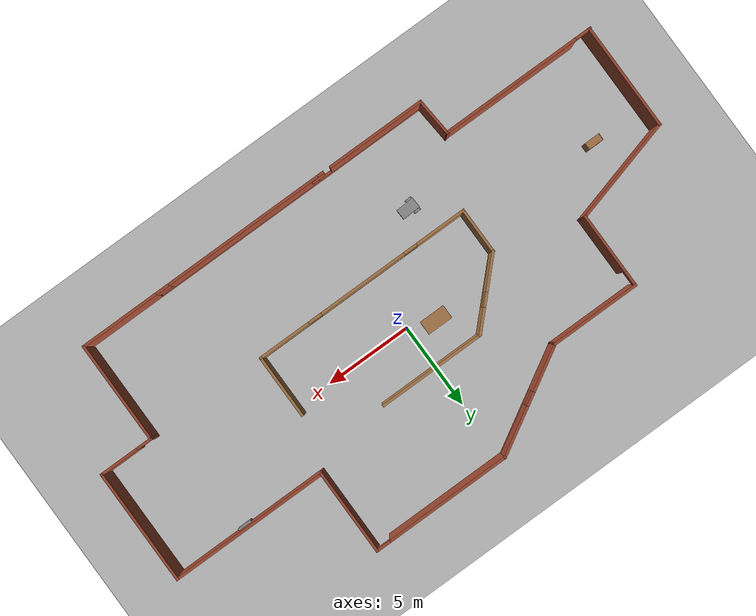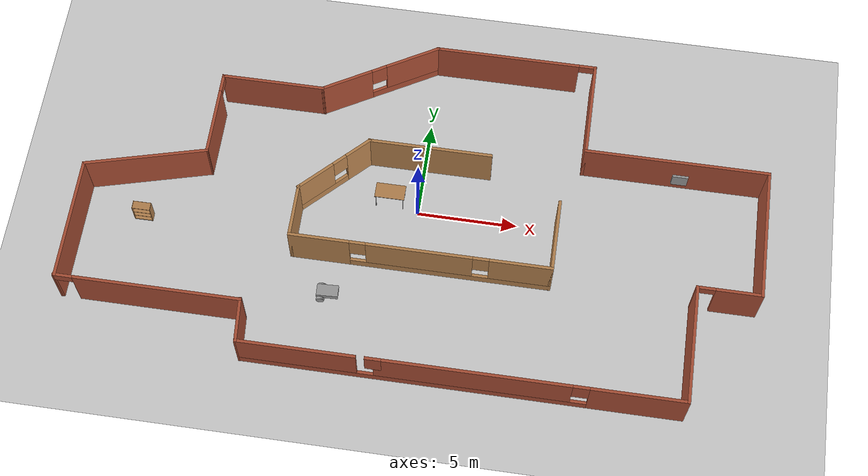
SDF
<sdf version="1.6">
 <world name="default">
  <model name="ground_plane">
   <static>1</static>
   <link name="link">
    <collision name="collision">
     <geometry><plane><normal>0 0 1</normal><size>100 100</size></plane></geometry>
     <surface>
      <contact><collide_bitmask>65535</collide_bitmask></contact>
      <friction><ode><mu>100</mu><mu2>50</mu2></ode></friction>
     </surface>
    </collision>
    <visual name="visual">
     <cast_shadows>0</cast_shadows>
     <geometry><plane><normal>0 0 1</normal><size>100 100</size></plane></geometry>
     <material>
      <script><uri>file://media/materials/scripts/gazebo.material</uri><name>Gazebo/Grey</name></script>
     </material>
    </visual>
   </link>
  </model>
  <model name="office">
   <pose>0.19118 -0.3324 0 0 -0 0</pose>
   <link name="Wall_10">
    <pose>3.71196 8.6392 0 0 -0 0</pose>
    <visual name="Wall_10_Visual_0">
     <pose>-0.451666 0 1.25 0 -0 0</pose>
     <geometry><box><size>7.34667 0.15 2.5</size></box></geometry>
     <material>
      <script><uri>file://media/materials/scripts/gazebo.material</uri><name>Gazebo/Bricks</name></script>
      <ambient>1 1 1 1</ambient>
     </material>
     <meta><layer>0</layer></meta>
    </visual>
    <collision name="Wall_10_Collision_0">
     <geometry><box><size>7.34667 0.15 2.5</size></box></geometry>
     <pose>-0.451666 0 1.25 0 -0 0</pose>
    </collision>
    <visual name="Wall_10_Visual_1">
     <pose>4.12333 0 1.25 0 -0 0</pose>
     <geometry><box><size>0.003332 0.15 2.5</size></box></geometry>
     <material>
      <script><uri>file://media/materials/scripts/gazebo.material</uri><name>Gazebo/Bricks</name></script>
      <ambient>1 1 1 1</ambient>
     </material>
     <meta><layer>0</layer></meta>
    </visual>
    <collision name="Wall_10_Collision_1">
     <geometry><box><size>0.003332 0.15 2.5</size></box></geometry>
     <pose>4.12333 0 1.25 0 -0 0</pose>
    </collision>
    <visual name="Wall_10_Visual_2">
     <pose>3.67167 0 2.25 0 -0 0</pose>
     <geometry><box><size>0.9 0.15 0.5</size></box></geometry>
     <material>
      <script><uri>file://media/materials/scripts/gazebo.material</uri><name>Gazebo/Bricks</name></script>
      <ambient>1 1 1 1</ambient>
     </material>
     <meta><layer>0</layer></meta>
    </visual>
    <collision name="Wall_10_Collision_2">
     <geometry><box><size>0.9 0.15 0.5</size></box></geometry>
     <pose>3.67167 0 2.25 0 -0 0</pose>
    </collision>
   </link>
   <link name="Wall_11">
    <collision name="Wall_11_Collision">
     <geometry><box><size>5 0.15 2.5</size></box></geometry>
     <pose>0 0 1.25 0 -0 0</pose>
    </collision>
    <visual name="Wall_11_Visual">
     <pose>0 0 1.25 0 -0 0</pose>
     <geometry><box><size>5 0.15 2.5</size></box></geometry>
     <material>
      <script><uri>file://media/materials/scripts/gazebo.material</uri><name>Gazebo/Bricks</name></script>
      <ambient>0.435294 0.796078 0.67451 1</ambient>
     </material>
     <meta><layer>0</layer></meta>
    </visual>
    <pose>7.76196 6.2142 0 0 0 -1.5708</pose>
   </link>
   <link name="Wall_12">
    <collision name="Wall_12_Collision">
     <geometry><box><size>9.25 0.15 2.5</size></box></geometry>
     <pose>0 0 1.25 0 -0 0</pose>
    </collision>
    <visual name="Wall_12_Visual">
     <pose>0 0 1.25 0 -0 0</pose>
     <geometry><box><size>9.25 0.15 2.5</size></box></geometry>
     <material>
      <script><uri>file://media/materials/scripts/gazebo.material</uri><name>Gazebo/Bricks</name></script>
      <ambient>0.435294 0.796078 0.67451 1</ambient>
     </material>
     <meta><layer>0</layer></meta>
    </visual>
    <pose>12.312 3.7892 0 0 -0 0</pose>
   </link>
   <link name="Wall_13">
    <collision name="Wall_13_Collision">
     <geometry><box><size>6.75 0.15 2.5</size></box></geometry>
     <pose>0 0 1.25 0 -0 0</pose>
    </collision>
    <visual name="Wall_13_Visual">
     <pose>0 0 1.25 0 -0 0</pose>
     <geometry><box><size>6.75 0.15 2.5</size></box></geometry>
     <material>
      <script><uri>file://media/materials/scripts/gazebo.material</uri><name>Gazebo/Bricks</name></script>
      <ambient>0.435294 0.796078 0.67451 1</ambient>
     </material>
     <meta><layer>0</layer></meta>
    </visual>
    <pose>16.862 0.489204 0 0 0 -1.5708</pose>
   </link>
   <link name="Wall_14">
    <pose>15.312 -2.8108 0 0 -0 3.14159</pose>
    <visual name="Wall_14_Visual_0">
     <pose>-0.469815 0 1.25 0 -0 0</pose>
     <geometry><box><size>2.31037 0.15 2.5</size></box></geometry>
     <material>
      <script><uri>file://media/materials/scripts/gazebo.material</uri><name>Gazebo/Bricks</name></script>
      <ambient>0.435294 0.796078 0.67451 1</ambient>
     </material>
     <meta><layer>0</layer></meta>
    </visual>
    <collision name="Wall_14_Collision_0">
     <geometry><box><size>2.31037 0.15 2.5</size></box></geometry>
     <pose>-0.469815 0 1.25 0 -0 0</pose>
    </collision>
    <visual name="Wall_14_Visual_1">
     <pose>1.60519 0 1.25 0 -0 0</pose>
     <geometry><box><size>0.03963 0.15 2.5</size></box></geometry>
     <material>
      <script><uri>file://media/materials/scripts/gazebo.material</uri><name>Gazebo/Bricks</name></script>
      <ambient>0.435294 0.796078 0.67451 1</ambient>
     </material>
     <meta><layer>0</layer></meta>
    </visual>
    <collision name="Wall_14_Collision_1">
     <geometry><box><size>0.03963 0.15 2.5</size></box></geometry>
     <pose>1.60519 0 1.25 0 -0 0</pose>
    </collision>
    <visual name="Wall_14_Visual_2">
     <pose>1.13537 0 2.25 0 -0 0</pose>
     <geometry><box><size>0.9 0.15 0.5</size></box></geometry>
     <material>
      <script><uri>file://media/materials/scripts/gazebo.material</uri><name>Gazebo/Bricks</name></script>
      <ambient>0.435294 0.796078 0.67451 1</ambient>
     </material>
     <meta><layer>0</layer></meta>
    </visual>
    <collision name="Wall_14_Collision_2">
     <geometry><box><size>0.9 0.15 0.5</size></box></geometry>
     <pose>1.13537 0 2.25 0 -0 0</pose>
    </collision>
   </link>
   <link name="Wall_15">
    <collision name="Wall_15_Collision">
     <geometry><box><size>6 0.15 2.5</size></box></geometry>
     <pose>0 0 1.25 0 -0 0</pose>
    </collision>
    <visual name="Wall_15_Visual">
     <pose>0 0 1.25 0 -0 0</pose>
     <geometry><box><size>6 0.15 2.5</size></box></geometry>
     <material>
      <script><uri>file://media/materials/scripts/gazebo.material</uri><name>Gazebo/Bricks</name></script>
      <ambient>0.435294 0.796078 0.67451 1</ambient>
     </material>
     <meta><layer>0</layer></meta>
    </visual>
    <pose>13.762 -5.7358 0 0 0 -1.5708</pose>
   </link>
   <link name="Wall_16">
    <pose>3.08696 -8.6608 0 0 -0 3.14159</pose>
    <visual name="Wall_16_Visual_0">
     <pose>-8.41899 0 1.25 0 -0 0</pose>
     <geometry><box><size>4.66203 0.15 2.5</size></box></geometry>
     <material>
      <script><uri>file://media/materials/scripts/gazebo.material</uri><name>Gazebo/Bricks</name></script>
      <ambient>0.435294 0.796078 0.67451 1</ambient>
     </material>
     <meta><layer>0</layer></meta>
    </visual>
    <collision name="Wall_16_Collision_0">
     <geometry><box><size>4.66203 0.15 2.5</size></box></geometry>
     <pose>-8.41899 0 1.25 0 -0 0</pose>
    </collision>
    <visual name="Wall_16_Visual_1">
     <pose>2.33101 0 0.25 0 -0 0</pose>
     <geometry><box><size>16.838 0.15 0.5</size></box></geometry>
     <material>
      <script><uri>file://media/materials/scripts/gazebo.material</uri><name>Gazebo/Bricks</name></script>
      <ambient>0.435294 0.796078 0.67451 1</ambient>
     </material>
     <meta><layer>0</layer></meta>
    </visual>
    <collision name="Wall_16_Collision_1">
     <geometry><box><size>16.838 0.15 0.5</size></box></geometry>
     <pose>2.33101 0 0.25 0 -0 0</pose>
    </collision>
    <visual name="Wall_16_Visual_2">
     <pose>-0.576441 0 1.5 0 -0 0</pose>
     <geometry><box><size>9.42306 0.15 2</size></box></geometry>
     <material>
      <script><uri>file://media/materials/scripts/gazebo.material</uri><name>Gazebo/Bricks</name></script>
      <ambient>0.435294 0.796078 0.67451 1</ambient>
     </material>
     <meta><layer>0</layer></meta>
    </visual>
    <collision name="Wall_16_Collision_2">
     <geometry><box><size>9.42306 0.15 2</size></box></geometry>
     <pose>-0.576441 0 1.5 0 -0 0</pose>
    </collision>
    <visual name="Wall_16_Visual_3">
     <pose>7.84255 0 1.5 0 -0 0</pose>
     <geometry><box><size>5.81491 0.15 2</size></box></geometry>
     <material>
      <script><uri>file://media/materials/scripts/gazebo.material</uri><name>Gazebo/Bricks</name></script>
      <ambient>0.435294 0.796078 0.67451 1</ambient>
     </material>
     <meta><layer>0</layer></meta>
    </visual>
    <collision name="Wall_16_Collision_3">
     <geometry><box><size>5.81491 0.15 2</size></box></geometry>
     <pose>7.84255 0 1.5 0 -0 0</pose>
    </collision>
    <visual name="Wall_16_Visual_4">
     <pose>-5.68797 0 1.9 0 -0 0</pose>
     <geometry><box><size>0.8 0.15 1.2</size></box></geometry>
     <material>
      <script><uri>file://media/materials/scripts/gazebo.material</uri><name>Gazebo/Bricks</name></script>
      <ambient>0.435294 0.796078 0.67451 1</ambient>
     </material>
     <meta><layer>0</layer></meta>
    </visual>
    <collision name="Wall_16_Collision_4">
     <geometry><box><size>0.8 0.15 1.2</size></box></geometry>
     <pose>-5.68797 0 1.9 0 -0 0</pose>
    </collision>
    <visual name="Wall_16_Visual_5">
     <pose>4.13509 0 1.9 0 -0 0</pose>
     <geometry><box><size>0.8 0.15 1.2</size></box></geometry>
     <material>
      <script><uri>file://media/materials/scripts/gazebo.material</uri><name>Gazebo/Bricks</name></script>
      <ambient>0.435294 0.796078 0.67451 1</ambient>
     </material>
     <meta><layer>0</layer></meta>
    </visual>
    <collision name="Wall_16_Collision_5">
     <geometry><box><size>0.8 0.15 1.2</size></box></geometry>
     <pose>4.13509 0 1.9 0 -0 0</pose>
    </collision>
   </link>
   <link name="Wall_17">
    <collision name="Wall_17_Collision">
     <geometry><box><size>2.28536 0.15 2.5</size></box></geometry>
     <pose>0 0 1.25 0 -0 0</pose>
    </collision>
    <visual name="Wall_17_Visual">
     <pose>0 0 1.25 0 -0 0</pose>
     <geometry><box><size>2.28536 0.15 2.5</size></box></geometry>
     <material>
      <script><uri>file://media/materials/scripts/gazebo.material</uri><name>Gazebo/Bricks</name></script>
      <ambient>0.435294 0.796078 0.67451 1</ambient>
     </material>
     <meta><layer>0</layer></meta>
    </visual>
    <pose>-7.675 -7.59667 0 0 -0 1.65233</pose>
   </link>
   <link name="Wall_18">
    <pose>-12.312 -6.56732 0 0 -0 3.14159</pose>
    <visual name="Wall_18_Visual_0">
     <pose>-0.488616 0 1.25 0 -0 0</pose>
     <geometry><box><size>8.27277 0.15 2.5</size></box></geometry>
     <material>
      <script><uri>file://media/materials/scripts/gazebo.material</uri><name>Gazebo/Bricks</name></script>
      <ambient>0.435294 0.796078 0.67451 1</ambient>
     </material>
     <meta><layer>0</layer></meta>
    </visual>
    <collision name="Wall_18_Collision_0">
     <geometry><box><size>8.27277 0.15 2.5</size></box></geometry>
     <pose>-0.488616 0 1.25 0 -0 0</pose>
    </collision>
    <visual name="Wall_18_Visual_1">
     <pose>4.58638 0 1.25 0 -0 0</pose>
     <geometry><box><size>0.077231 0.15 2.5</size></box></geometry>
     <material>
      <script><uri>file://media/materials/scripts/gazebo.material</uri><name>Gazebo/Bricks</name></script>
      <ambient>0.435294 0.796078 0.67451 1</ambient>
     </material>
     <meta><layer>0</layer></meta>
    </visual>
    <collision name="Wall_18_Collision_1">
     <geometry><box><size>0.077231 0.15 2.5</size></box></geometry>
     <pose>4.58638 0 1.25 0 -0 0</pose>
    </collision>
    <visual name="Wall_18_Visual_2">
     <pose>4.09777 0 2.25 0 -0 0</pose>
     <geometry><box><size>0.9 0.15 0.5</size></box></geometry>
     <material>
      <script><uri>file://media/materials/scripts/gazebo.material</uri><name>Gazebo/Bricks</name></script>
      <ambient>0.435294 0.796078 0.67451 1</ambient>
     </material>
     <meta><layer>0</layer></meta>
    </visual>
    <collision name="Wall_18_Collision_2">
     <geometry><box><size>0.9 0.15 0.5</size></box></geometry>
     <pose>4.09777 0 2.25 0 -0 0</pose>
    </collision>
   </link>
   <link name="Wall_21">
    <pose>-4.52938 1.29817 0 0 0 -2.35619</pose>
    <visual name="Wall_21_Visual_0">
     <pose>-1.48243 0 1.25 0 -0 0</pose>
     <geometry><box><size>1.53513 0.15 2.5</size></box></geometry>
     <material>
      <script><uri>file://media/materials/scripts/gazebo.material</uri><name>Gazebo/Wood</name></script>
      <ambient>0.435294 0.796078 0.67451 1</ambient>
     </material>
     <meta><layer>0</layer></meta>
    </visual>
    <collision name="Wall_21_Collision_0">
     <geometry><box><size>1.53513 0.15 2.5</size></box></geometry>
     <pose>-1.48243 0 1.25 0 -0 0</pose>
    </collision>
    <visual name="Wall_21_Visual_1">
     <pose>0.767566 0 0.25 0 -0 0</pose>
     <geometry><box><size>2.96487 0.15 0.5</size></box></geometry>
     <material>
      <script><uri>file://media/materials/scripts/gazebo.material</uri><name>Gazebo/Wood</name></script>
      <ambient>0.435294 0.796078 0.67451 1</ambient>
     </material>
     <meta><layer>0</layer></meta>
    </visual>
    <collision name="Wall_21_Collision_1">
     <geometry><box><size>2.96487 0.15 0.5</size></box></geometry>
     <pose>0.767566 0 0.25 0 -0 0</pose>
    </collision>
    <visual name="Wall_21_Visual_2">
     <pose>1.16757 0 1.5 0 -0 0</pose>
     <geometry><box><size>2.16487 0.15 2</size></box></geometry>
     <material>
      <script><uri>file://media/materials/scripts/gazebo.material</uri><name>Gazebo/Wood</name></script>
      <ambient>0.435294 0.796078 0.67451 1</ambient>
     </material>
     <meta><layer>0</layer></meta>
    </visual>
    <collision name="Wall_21_Collision_2">
     <geometry><box><size>2.16487 0.15 2</size></box></geometry>
     <pose>1.16757 0 1.5 0 -0 0</pose>
    </collision>
    <visual name="Wall_21_Visual_3">
     <pose>-0.314868 0 1.9 0 -0 0</pose>
     <geometry><box><size>0.8 0.15 1.2</size></box></geometry>
     <material>
      <script><uri>file://media/materials/scripts/gazebo.material</uri><name>Gazebo/Wood</name></script>
      <ambient>0.435294 0.796078 0.67451 1</ambient>
     </material>
     <meta><layer>0</layer></meta>
    </visual>
    <collision name="Wall_21_Collision_3">
     <geometry><box><size>0.8 0.15 1.2</size></box></geometry>
     <pose>-0.314868 0 1.9 0 -0 0</pose>
    </collision>
   </link>
   <link name="Wall_22">
    <collision name="Wall_22_Collision">
     <geometry><box><size>2.75 0.15 2.5</size></box></geometry>
     <pose>0 0 1.25 0 -0 0</pose>
    </collision>
    <visual name="Wall_22_Visual">
     <pose>0 0 1.25 0 -0 0</pose>
     <geometry><box><size>2.75 0.15 2.5</size></box></geometry>
     <material>
      <script><uri>file://media/materials/scripts/gazebo.material</uri><name>Gazebo/Wood</name></script>
      <ambient>0.435294 0.796078 0.67451 1</ambient>
     </material>
     <meta><layer>0</layer></meta>
    </visual>
    <pose>-6.06734 -1.53979 0 0 0 -1.5708</pose>
   </link>
   <link name="Wall_23">
    <pose>0.357662 -2.83979 0 0 -0 0</pose>
    <visual name="Wall_23_Visual_0">
     <pose>-4.98806 0 1.25 0 -0 0</pose>
     <geometry><box><size>3.02388 0.15 2.5</size></box></geometry>
     <material>
      <script><uri>file://media/materials/scripts/gazebo.material</uri><name>Gazebo/Wood</name></script>
      <ambient>0.435294 0.796078 0.67451 1</ambient>
     </material>
     <meta><layer>0</layer></meta>
    </visual>
    <collision name="Wall_23_Collision_0">
     <geometry><box><size>3.02388 0.15 2.5</size></box></geometry>
     <pose>-4.98806 0 1.25 0 -0 0</pose>
    </collision>
    <visual name="Wall_23_Visual_1">
     <pose>1.51194 0 0.25 0 -0 0</pose>
     <geometry><box><size>9.97612 0.15 0.5</size></box></geometry>
     <material>
      <script><uri>file://media/materials/scripts/gazebo.material</uri><name>Gazebo/Wood</name></script>
      <ambient>0.435294 0.796078 0.67451 1</ambient>
     </material>
     <meta><layer>0</layer></meta>
    </visual>
    <collision name="Wall_23_Collision_1">
     <geometry><box><size>9.97612 0.15 0.5</size></box></geometry>
     <pose>1.51194 0 0.25 0 -0 0</pose>
    </collision>
    <visual name="Wall_23_Visual_2">
     <pose>-0.051543 0 1.5 0 -0 0</pose>
     <geometry><box><size>5.24915 0.15 2</size></box></geometry>
     <material>
      <script><uri>file://media/materials/scripts/gazebo.material</uri><name>Gazebo/Wood</name></script>
      <ambient>0.435294 0.796078 0.67451 1</ambient>
     </material>
     <meta><layer>0</layer></meta>
    </visual>
    <collision name="Wall_23_Collision_2">
     <geometry><box><size>5.24915 0.15 2</size></box></geometry>
     <pose>-0.051543 0 1.5 0 -0 0</pose>
    </collision>
    <visual name="Wall_23_Visual_3">
     <pose>4.93652 0 1.5 0 -0 0</pose>
     <geometry><box><size>3.12697 0.15 2</size></box></geometry>
     <material>
      <script><uri>file://media/materials/scripts/gazebo.material</uri><name>Gazebo/Wood</name></script>
      <ambient>0.435294 0.796078 0.67451 1</ambient>
     </material>
     <meta><layer>0</layer></meta>
    </visual>
    <collision name="Wall_23_Collision_3">
     <geometry><box><size>3.12697 0.15 2</size></box></geometry>
     <pose>4.93652 0 1.5 0 -0 0</pose>
    </collision>
    <visual name="Wall_23_Visual_4">
     <pose>-3.07612 0 1.9 0 -0 0</pose>
     <geometry><box><size>0.8 0.15 1.2</size></box></geometry>
     <material>
      <script><uri>file://media/materials/scripts/gazebo.material</uri><name>Gazebo/Wood</name></script>
      <ambient>0.435294 0.796078 0.67451 1</ambient>
     </material>
     <meta><layer>0</layer></meta>
    </visual>
    <collision name="Wall_23_Collision_4">
     <geometry><box><size>0.8 0.15 1.2</size></box></geometry>
     <pose>-3.07612 0 1.9 0 -0 0</pose>
    </collision>
    <visual name="Wall_23_Visual_5">
     <pose>2.97303 0 1.9 0 -0 0</pose>
     <geometry><box><size>0.8 0.15 1.2</size></box></geometry>
     <material>
      <script><uri>file://media/materials/scripts/gazebo.material</uri><name>Gazebo/Wood</name></script>
      <ambient>0.435294 0.796078 0.67451 1</ambient>
     </material>
     <meta><layer>0</layer></meta>
    </visual>
    <collision name="Wall_23_Collision_5">
     <geometry><box><size>0.8 0.15 1.2</size></box></geometry>
     <pose>2.97303 0 1.9 0 -0 0</pose>
    </collision>
   </link>
   <link name="Wall_24">
    <collision name="Wall_24_Collision">
     <geometry><box><size>3.75 0.15 2.5</size></box></geometry>
     <pose>0 0 1.25 0 -0 0</pose>
    </collision>
    <visual name="Wall_24_Visual">
     <pose>0 0 1.25 0 -0 0</pose>
     <geometry><box><size>3.75 0.15 2.5</size></box></geometry>
     <material>
      <script><uri>file://media/materials/scripts/gazebo.material</uri><name>Gazebo/Wood</name></script>
      <ambient>0.435294 0.796078 0.67451 1</ambient>
     </material>
     <meta><layer>0</layer></meta>
    </visual>
    <pose>6.78266 -1.03979 0 0 -0 1.5708</pose>
   </link>
   <link name="Wall_27">
    <collision name="Wall_27_Collision">
     <geometry><box><size>6.25 0.15 2.5</size></box></geometry>
     <pose>0 0 1.25 0 -0 0</pose>
    </collision>
    <visual name="Wall_27_Visual">
     <pose>0 0 1.25 0 -0 0</pose>
     <geometry><box><size>6.25 0.15 2.5</size></box></geometry>
     <material>
      <script><uri>file://media/materials/scripts/gazebo.material</uri><name>Gazebo/Wood</name></script>
      <ambient>0.435294 0.796078 0.67451 1</ambient>
     </material>
     <meta><layer>0</layer></meta>
    </visual>
    <pose>0.058577 2.83612 0 0 -0 0</pose>
   </link>
   <link name="Wall_5">
    <collision name="Wall_5_Collision">
     <geometry><box><size>6.25 0.15 2.5</size></box></geometry>
     <pose>0 0 1.25 0 -0 0</pose>
    </collision>
    <visual name="Wall_5_Visual">
     <pose>0 0 1.25 0 -0 0</pose>
     <geometry><box><size>6.25 0.15 2.5</size></box></geometry>
     <material>
      <script><uri>file://media/materials/scripts/gazebo.material</uri><name>Gazebo/Bricks</name></script>
      <ambient>0.435294 0.796078 0.67451 1</ambient>
     </material>
     <meta><layer>0</layer></meta>
    </visual>
    <pose>-16.8295 -3.51459 0 0 -0 1.5708</pose>
   </link>
   <link name="Wall_6">
    <collision name="Wall_6_Collision">
     <geometry><box><size>6.25 0.15 2.5</size></box></geometry>
     <pose>0 0 1.25 0 -0 0</pose>
    </collision>
    <visual name="Wall_6_Visual">
     <pose>0 0 1.25 0 -0 0</pose>
     <geometry><box><size>6.25 0.15 2.5</size></box></geometry>
     <material>
      <script><uri>file://media/materials/scripts/gazebo.material</uri><name>Gazebo/Bricks</name></script>
      <ambient>0.435294 0.796078 0.67451 1</ambient>
     </material>
     <meta><layer>0</layer></meta>
    </visual>
    <pose>-13.8834 0.324806 0 0 -0 0.261799</pose>
   </link>
   <link name="Wall_7">
    <pose>-10.9373 3.2892 0 0 -0 1.5708</pose>
    <visual name="Wall_7_Visual_0">
     <pose>-0.480218 0 1.25 0 -0 0</pose>
     <geometry><box><size>3.53957 0.15 2.5</size></box></geometry>
     <material>
      <script><uri>file://media/materials/scripts/gazebo.material</uri><name>Gazebo/Bricks</name></script>
      <ambient>0.435294 0.796078 0.67451 1</ambient>
     </material>
     <meta><layer>0</layer></meta>
    </visual>
    <collision name="Wall_7_Collision_0">
     <geometry><box><size>3.53957 0.15 2.5</size></box></geometry>
     <pose>-0.480218 0 1.25 0 -0 0</pose>
    </collision>
    <visual name="Wall_7_Visual_1">
     <pose>2.21978 0 1.25 0 -0 0</pose>
     <geometry><box><size>0.060435 0.15 2.5</size></box></geometry>
     <material>
      <script><uri>file://media/materials/scripts/gazebo.material</uri><name>Gazebo/Bricks</name></script>
      <ambient>0.435294 0.796078 0.67451 1</ambient>
     </material>
     <meta><layer>0</layer></meta>
    </visual>
    <collision name="Wall_7_Collision_1">
     <geometry><box><size>0.060435 0.15 2.5</size></box></geometry>
     <pose>2.21978 0 1.25 0 -0 0</pose>
    </collision>
    <visual name="Wall_7_Visual_2">
     <pose>1.73957 0 2.25 0 -0 0</pose>
     <geometry><box><size>0.9 0.15 0.5</size></box></geometry>
     <material>
      <script><uri>file://media/materials/scripts/gazebo.material</uri><name>Gazebo/Bricks</name></script>
      <ambient>0.435294 0.796078 0.67451 1</ambient>
     </material>
     <meta><layer>0</layer></meta>
    </visual>
    <collision name="Wall_7_Collision_2">
     <geometry><box><size>0.9 0.15 0.5</size></box></geometry>
     <pose>1.73957 0 2.25 0 -0 0</pose>
    </collision>
   </link>
   <link name="Wall_8">
    <collision name="Wall_8_Collision">
     <geometry><box><size>5.25 0.15 2.5</size></box></geometry>
     <pose>0 0 1.25 0 -0 0</pose>
    </collision>
    <visual name="Wall_8_Visual">
     <pose>0 0 1.25 0 -0 0</pose>
     <geometry><box><size>5.25 0.15 2.5</size></box></geometry>
     <material>
      <script><uri>file://media/materials/scripts/gazebo.material</uri><name>Gazebo/Bricks</name></script>
      <ambient>0.435294 0.796078 0.67451 1</ambient>
     </material>
     <meta><layer>0</layer></meta>
    </visual>
    <pose>-8.3873 5.4642 0 0 -0 0</pose>
   </link>
   <link name="Wall_9">
    <pose>-3.08767 7.0517 0 0 -0 0.523599</pose>
    <visual name="Wall_9_Visual_0">
     <pose>-1.86997 0 1.25 0 -0 0</pose>
     <geometry><box><size>2.76007 0.15 2.5</size></box></geometry>
     <material>
      <script><uri>file://media/materials/scripts/gazebo.material</uri><name>Gazebo/Bricks</name></script>
      <ambient>0.435294 0.796078 0.67451 1</ambient>
     </material>
     <meta><layer>0</layer></meta>
    </visual>
    <collision name="Wall_9_Collision_0">
     <geometry><box><size>2.76007 0.15 2.5</size></box></geometry>
     <pose>-1.86997 0 1.25 0 -0 0</pose>
    </collision>
    <visual name="Wall_9_Visual_1">
     <pose>1.38003 0 0.25 0 -0 0</pose>
     <geometry><box><size>3.73993 0.15 0.5</size></box></geometry>
     <material>
      <script><uri>file://media/materials/scripts/gazebo.material</uri><name>Gazebo/Bricks</name></script>
      <ambient>0.435294 0.796078 0.67451 1</ambient>
     </material>
     <meta><layer>0</layer></meta>
    </visual>
    <collision name="Wall_9_Collision_1">
     <geometry><box><size>3.73993 0.15 0.5</size></box></geometry>
     <pose>1.38003 0 0.25 0 -0 0</pose>
    </collision>
    <visual name="Wall_9_Visual_2">
     <pose>1.78003 0 1.5 0 -0 0</pose>
     <geometry><box><size>2.93993 0.15 2</size></box></geometry>
     <material>
      <script><uri>file://media/materials/scripts/gazebo.material</uri><name>Gazebo/Bricks</name></script>
      <ambient>0.435294 0.796078 0.67451 1</ambient>
     </material>
     <meta><layer>0</layer></meta>
    </visual>
    <collision name="Wall_9_Collision_2">
     <geometry><box><size>2.93993 0.15 2</size></box></geometry>
     <pose>1.78003 0 1.5 0 -0 0</pose>
    </collision>
    <visual name="Wall_9_Visual_3">
     <pose>-0.089932 0 1.9 0 -0 0</pose>
     <geometry><box><size>0.8 0.15 1.2</size></box></geometry>
     <material>
      <script><uri>file://media/materials/scripts/gazebo.material</uri><name>Gazebo/Bricks</name></script>
      <ambient>0.435294 0.796078 0.67451 1</ambient>
     </material>
     <meta><layer>0</layer></meta>
    </visual>
    <collision name="Wall_9_Collision_3">
     <geometry><box><size>0.8 0.15 1.2</size></box></geometry>
     <pose>-0.089932 0 1.9 0 -0 0</pose>
    </collision>
   </link>
   <link name="Window_3">
    <collision name="Window_3_Collision">
     <geometry><box><size>0.8 0.17 0.8</size></box></geometry>
     <pose>0 0 0.4 0 -0 0</pose>
    </collision>
    <visual name="Window_3_Visual">
     <pose>0 0 0.4 0 -0 0</pose>
     <geometry><box><size>0.8 0.17 0.8</size></box></geometry>
     <material>
      <script><uri>file://media/materials/scripts/gazebo.material</uri><name>Gazebo/Grey</name></script>
     </material>
    </visual>
    <pose>12.6464 3.683 0.5 0 -0 0</pose>
   </link>
   <static>1</static>
  </model>
  <model name="cart">
   <link name="link_0">
    <pose>0.000334 -0.065586 0.044669 0 -0 0</pose>
    <inertial>
     <mass>0.183478</mass>
     <inertia>
      <ixx>0.0186131</ixx>
      <ixy>0</ixy>
      <ixz>0</ixz>
      <iyy>0.00678768</iyy>
      <iyz>0</iyz>
      <izz>0.0228966</izz>
     </inertia>
    </inertial>
    <visual name="visual">
     <pose>0 0 0.2 0 -0 0</pose>
     <geometry><box><size>0.6017 1.06558 0.286166</size></box></geometry>
     <material>
      <lighting>1</lighting>
      <script><uri>file://media/materials/scripts/gazebo.material</uri><name>Gazebo/Grey</name></script>
      <shader type="pixel"><normal_map>__default__</normal_map></shader>
      <ambient>0.3 0.3 0.3 1</ambient>
      <diffuse>0.7 0.7 0.7 1</diffuse>
      <specular>0.01 0.01 0.01 1</specular>
      <emissive>0 0 0 1</emissive>
     </material>
    </visual>
    <collision name="collision">
     <pose>0 0 0.2 0 -0 0</pose>
     <geometry><box><size>0.6017 1.06558 0.286166</size></box></geometry>
     <surface>
      <friction>
       <ode><mu>1</mu><mu2>1</mu2><fdir1>0 0 0</fdir1><slip1>0</slip1><slip2>0</slip2></ode>
       <torsional>
        <coefficient>1</coefficient>
        <patch_radius>0</patch_radius>
        <surface_radius>0</surface_radius>
        <use_patch_radius>1</use_patch_radius>
        <ode><slip>0</slip></ode>
       </torsional>
      </friction>
      <bounce><restitution_coefficient>0</restitution_coefficient><threshold>1e+06</threshold></bounce>
      <contact>
       <collide_without_contact>0</collide_without_contact>
       <collide_without_contact_bitmask>1</collide_without_contact_bitmask>
       <collide_bitmask>1</collide_bitmask>
       <ode>
        <soft_cfm>0</soft_cfm>
        <soft_erp>0.2</soft_erp>
        <kp>1e+13</kp>
        <kd>1</kd>
        <max_vel>0.01</max_vel>
        <min_depth>0</min_depth>
       </ode>
       <bullet>
        <split_impulse>1</split_impulse>
        <split_impulse_penetration_threshold>-0.01</split_impulse_penetration_threshold>
        <soft_cfm>0</soft_cfm>
        <soft_erp>0.2</soft_erp>
        <kp>1e+13</kp>
        <kd>1</kd>
       </bullet>
      </contact>
     </surface>
    </collision>
   </link>
   <link name="link_1">
    <pose>-0.001 -0.462788 -0.129729 0 -0 0</pose>
    <inertial>
     <mass>1.886</mass>
     <inertia>
      <ixx>0.0115145</ixx>
      <ixy>0</ixy>
      <ixz>0</ixz>
      <iyy>0.0115145</iyy>
      <iyz>0</iyz>
      <izz>0.0115145</izz>
     </inertia>
     <pose>0 0 0.024704 0 -0 0</pose>
    </inertial>
    <visual name="visual">
     <pose>0 0 0.1 0 -0 0</pose>
     <geometry><sphere><radius>0.123544</radius></sphere></geometry>
     <material>
      <lighting>1</lighting>
      <script><uri>file://media/materials/scripts/gazebo.material</uri><name>Gazebo/Grey</name></script>
      <shader type="pixel"><normal_map>__default__</normal_map></shader>
      <ambient>0.3 0.3 0.3 1</ambient>
      <diffuse>0.7 0.7 0.7 1</diffuse>
      <specular>0.01 0.01 0.01 1</specular>
      <emissive>0 0 0 1</emissive>
     </material>
    </visual>
    <collision name="collision">
     <pose>0 0 0.1 0 -0 0</pose>
     <geometry><sphere><radius>0.123544</radius></sphere></geometry>
     <surface>
      <friction>
       <ode><mu>1</mu><mu2>1</mu2><fdir1>0 0 0</fdir1><slip1>0</slip1><slip2>0</slip2></ode>
       <torsional>
        <coefficient>1</coefficient>
        <patch_radius>0</patch_radius>
        <surface_radius>0</surface_radius>
        <use_patch_radius>1</use_patch_radius>
        <ode><slip>0</slip></ode>
       </torsional>
      </friction>
      <bounce><restitution_coefficient>0</restitution_coefficient><threshold>1e+06</threshold></bounce>
      <contact>
       <collide_without_contact>0</collide_without_contact>
       <collide_without_contact_bitmask>1</collide_without_contact_bitmask>
       <collide_bitmask>1</collide_bitmask>
       <ode>
        <soft_cfm>0</soft_cfm>
        <soft_erp>0.2</soft_erp>
        <kp>1e+13</kp>
        <kd>1</kd>
        <max_vel>0.01</max_vel>
        <min_depth>0</min_depth>
       </ode>
       <bullet>
        <split_impulse>1</split_impulse>
        <split_impulse_penetration_threshold>-0.01</split_impulse_penetration_threshold>
        <soft_cfm>0</soft_cfm>
        <soft_erp>0.2</soft_erp>
        <kp>1e+13</kp>
        <kd>1</kd>
       </bullet>
      </contact>
     </surface>
    </collision>
   </link>
   <link name="link_2">
    <pose>0.368986 0.26419 0.04253 3.14159 1.55999 3.14159</pose>
    <inertial>
     <mass>0.0216399</mass>
     <inertia>
      <ixx>0.000254029</ixx>
      <ixy>0</ixy>
      <ixz>0</ixz>
      <iyy>0.000254029</iyy>
      <iyz>0</iyz>
      <izz>0.000445951</izz>
     </inertia>
    </inertial>
    <visual name="visual">
     <geometry><cylinder><radius>0.203016</radius><length>0.131225</length></cylinder></geometry>
     <material>
      <lighting>1</lighting>
      <script><uri>file://media/materials/scripts/gazebo.material</uri><name>Gazebo/Grey</name></script>
      <shader type="pixel"><normal_map>__default__</normal_map></shader>
      <ambient>0.3 0.3 0.3 1</ambient>
      <diffuse>0.7 0.7 0.7 1</diffuse>
      <specular>0.01 0.01 0.01 1</specular>
      <emissive>0 0 0 1</emissive>
     </material>
    </visual>
    <collision name="collision">
     <geometry><cylinder><radius>0.203016</radius><length>0.131225</length></cylinder></geometry>
     <surface>
      <friction>
       <ode><mu>1</mu><mu2>1</mu2><fdir1>0 0 0</fdir1><slip1>0</slip1><slip2>0</slip2></ode>
       <torsional>
        <coefficient>1</coefficient>
        <patch_radius>0</patch_radius>
        <surface_radius>0</surface_radius>
        <use_patch_radius>1</use_patch_radius>
        <ode><slip>0</slip></ode>
       </torsional>
      </friction>
      <bounce><restitution_coefficient>0</restitution_coefficient><threshold>1e+06</threshold></bounce>
      <contact>
       <collide_without_contact>0</collide_without_contact>
       <collide_without_contact_bitmask>1</collide_without_contact_bitmask>
       <collide_bitmask>1</collide_bitmask>
       <ode>
        <soft_cfm>0</soft_cfm>
        <soft_erp>0.2</soft_erp>
        <kp>1e+13</kp>
        <kd>1</kd>
        <max_vel>0.01</max_vel>
        <min_depth>0</min_depth>
       </ode>
       <bullet>
        <split_impulse>1</split_impulse>
        <split_impulse_penetration_threshold>-0.01</split_impulse_penetration_threshold>
        <soft_cfm>0</soft_cfm>
        <soft_erp>0.2</soft_erp>
        <kp>1e+13</kp>
        <kd>1</kd>
       </bullet>
      </contact>
     </surface>
    </collision>
   </link>
   <link name="link_2_clone">
    <pose>-0.368319 0.26419 0.04253 3.14159 1.55999 3.14159</pose>
    <inertial>
     <mass>0.0216399</mass>
     <inertia>
      <ixx>0.000254029</ixx>
      <ixy>0</ixy>
      <ixz>0</ixz>
      <iyy>0.000254029</iyy>
      <iyz>0</iyz>
      <izz>0.000445951</izz>
     </inertia>
    </inertial>
    <visual name="visual">
     <geometry><cylinder><radius>0.203016</radius><length>0.131225</length></cylinder></geometry>
     <material>
      <lighting>1</lighting>
      <script><uri>file://media/materials/scripts/gazebo.material</uri><name>Gazebo/Grey</name></script>
      <shader type="pixel"><normal_map>__default__</normal_map></shader>
      <ambient>0.3 0.3 0.3 1</ambient>
      <diffuse>0.7 0.7 0.7 1</diffuse>
      <specular>0.01 0.01 0.01 1</specular>
      <emissive>0 0 0 1</emissive>
     </material>
    </visual>
    <collision name="collision">
     <geometry><cylinder><radius>0.203016</radius><length>0.131225</length></cylinder></geometry>
     <surface>
      <friction>
       <ode><mu>1</mu><mu2>1</mu2><fdir1>0 0 0</fdir1><slip1>0</slip1><slip2>0</slip2></ode>
       <torsional>
        <coefficient>1</coefficient>
        <patch_radius>0</patch_radius>
        <surface_radius>0</surface_radius>
        <use_patch_radius>1</use_patch_radius>
        <ode><slip>0</slip></ode>
       </torsional>
      </friction>
      <bounce><restitution_coefficient>0</restitution_coefficient><threshold>1e+06</threshold></bounce>
      <contact>
       <collide_without_contact>0</collide_without_contact>
       <collide_without_contact_bitmask>1</collide_without_contact_bitmask>
       <collide_bitmask>1</collide_bitmask>
       <ode>
        <soft_cfm>0</soft_cfm>
        <soft_erp>0.2</soft_erp>
        <kp>1e+13</kp>
        <kd>1</kd>
        <max_vel>0.01</max_vel>
        <min_depth>0</min_depth>
       </ode>
       <bullet>
        <split_impulse>1</split_impulse>
        <split_impulse_penetration_threshold>-0.01</split_impulse_penetration_threshold>
        <soft_cfm>0</soft_cfm>
        <soft_erp>0.2</soft_erp>
        <kp>1e+13</kp>
        <kd>1</kd>
       </bullet>
      </contact>
     </surface>
    </collision>
   </link>
   <joint name="link_0_JOINT_0" type="revolute">
    <parent>link_0</parent>
    <child>link_2</child>
    <axis>
     <xyz>0 0 1</xyz>
     <use_parent_model_frame>0</use_parent_model_frame>
     <limit>
      <lower>-1.79769e+308</lower>
      <upper>1.79769e+308</upper>
      <effort>-1</effort>
      <velocity>-1</velocity>
     </limit>
     <dynamics>
      <spring_reference>0</spring_reference>
      <spring_stiffness>0</spring_stiffness>
      <damping>0</damping>
     </dynamics>
    </axis>
    <physics>
     <ode><limit><cfm>0</cfm><erp>0.2</erp></limit><suspension><cfm>0</cfm><erp>0.2</erp></suspension></ode>
    </physics>
   </joint>
   <joint name="link_0_JOINT_1" type="revolute">
    <parent>link_0</parent>
    <child>link_2_clone</child>
    <axis>
     <xyz>0 0 1</xyz>
     <use_parent_model_frame>0</use_parent_model_frame>
     <limit>
      <lower>-1.79769e+308</lower>
      <upper>1.79769e+308</upper>
      <effort>-1</effort>
      <velocity>-1</velocity>
     </limit>
     <dynamics>
      <spring_reference>0</spring_reference>
      <spring_stiffness>0</spring_stiffness>
      <damping>0</damping>
     </dynamics>
    </axis>
    <physics>
     <ode><limit><cfm>0</cfm><erp>0.2</erp></limit><suspension><cfm>0</cfm><erp>0.2</erp></suspension></ode>
    </physics>
   </joint>
   <joint name="link_0_JOINT_2" type="ball">
    <parent>link_0</parent>
    <child>link_1</child>
    <physics>
     <ode><limit><cfm>0</cfm><erp>0.2</erp></limit><suspension><cfm>0</cfm><erp>0.2</erp></suspension></ode>
    </physics>
   </joint>
   <static>0</static>
   <pose>-3.83609 -5.02982 0.158308 0.01089 -0 1.61547</pose>
  </model>
  <model name="bookshelf">
   <static>1</static>
   <link name="link">
    <inertial><mass>1</mass></inertial>
    <collision name="back">
     <pose>0 0.005 0.6 0 -0 0</pose>
     <geometry><box><size>0.9 0.01 1.2</size></box></geometry>
    </collision>
    <visual name="visual1">
     <pose>0 0.005 0.6 0 -0 0</pose>
     <geometry><box><size>0.9 0.01 1.2</size></box></geometry>
     <material>
      <script><uri>file://media/materials/scripts/gazebo.material</uri><name>Gazebo/Wood</name></script>
     </material>
    </visual>
    <collision name="left_side">
     <pose>0.45 -0.195 0.6 0 -0 0</pose>
     <geometry><box><size>0.02 0.4 1.2</size></box></geometry>
    </collision>
    <visual name="visual2">
     <pose>0.45 -0.195 0.6 0 -0 0</pose>
     <geometry><box><size>0.02 0.4 1.2</size></box></geometry>
     <material>
      <script><uri>file://media/materials/scripts/gazebo.material</uri><name>Gazebo/Wood</name></script>
     </material>
    </visual>
    <collision name="right_side">
     <pose>-0.45 -0.195 0.6 0 -0 0</pose>
     <geometry><box><size>0.02 0.4 1.2</size></box></geometry>
    </collision>
    <visual name="visual3">
     <pose>-0.45 -0.195 0.6 0 -0 0</pose>
     <geometry><box><size>0.02 0.4 1.2</size></box></geometry>
     <material>
      <script><uri>file://media/materials/scripts/gazebo.material</uri><name>Gazebo/Wood</name></script>
     </material>
    </visual>
    <collision name="bottom">
     <pose>0 -0.195 0.03 0 -0 0</pose>
     <geometry><box><size>0.88 0.4 0.06</size></box></geometry>
    </collision>
    <visual name="visual4">
     <pose>0 -0.195 0.03 0 -0 0</pose>
     <geometry><box><size>0.88 0.4 0.06</size></box></geometry>
     <material>
      <script><uri>file://media/materials/scripts/gazebo.material</uri><name>Gazebo/Wood</name></script>
     </material>
    </visual>
    <collision name="top">
     <pose>0 -0.195 1.19 0 -0 0</pose>
     <geometry><box><size>0.88 0.4 0.02</size></box></geometry>
    </collision>
    <visual name="visual5">
     <pose>0 -0.195 1.19 0 -0 0</pose>
     <geometry><box><size>0.88 0.4 0.02</size></box></geometry>
     <material>
      <script><uri>file://media/materials/scripts/gazebo.material</uri><name>Gazebo/Wood</name></script>
     </material>
    </visual>
    <collision name="low_shelf">
     <pose>0 -0.195 0.43 0 -0 0</pose>
     <geometry><box><size>0.88 0.4 0.02</size></box></geometry>
    </collision>
    <visual name="visual6">
     <pose>0 -0.195 0.43 0 -0 0</pose>
     <geometry><box><size>0.88 0.4 0.02</size></box></geometry>
     <material>
      <script><uri>file://media/materials/scripts/gazebo.material</uri><name>Gazebo/Wood</name></script>
     </material>
    </visual>
    <collision name="high_shelf">
     <pose>0 -0.195 0.8 0 -0 0</pose>
     <geometry><box><size>0.88 0.4 0.02</size></box></geometry>
    </collision>
    <visual name="visual7">
     <pose>0 -0.195 0.8 0 -0 0</pose>
     <geometry><box><size>0.88 0.4 0.02</size></box></geometry>
     <material>
      <script><uri>file://media/materials/scripts/gazebo.material</uri><name>Gazebo/Wood</name></script>
     </material>
    </visual>
   </link>
   <pose>-13.6324 -1.90789 0 0 -0 0</pose>
  </model>
  <model name="table">
   <static>1</static>
   <link name="link">
    <collision name="surface">
     <pose>0 0 1 0 -0 0</pose>
     <geometry><box><size>1.5 0.8 0.03</size></box></geometry>
     <surface><friction><ode><mu>0.6</mu><mu2>0.6</mu2></ode></friction></surface>
    </collision>
    <visual name="visual1">
     <pose>0 0 1 0 -0 0</pose>
     <geometry><box><size>1.5 0.8 0.03</size></box></geometry>
     <material>
      <script><uri>file://media/materials/scripts/gazebo.material</uri><name>Gazebo/Wood</name></script>
     </material>
    </visual>
    <collision name="front_left_leg">
     <pose>0.68 0.38 0.5 0 -0 0</pose>
     <geometry><cylinder><radius>0.02</radius><length>1</length></cylinder></geometry>
    </collision>
    <visual name="front_left_leg">
     <pose>0.68 0.38 0.5 0 -0 0</pose>
     <geometry><cylinder><radius>0.02</radius><length>1</length></cylinder></geometry>
     <material>
      <script><uri>file://media/materials/scripts/gazebo.material</uri><name>Gazebo/Grey</name></script>
     </material>
    </visual>
    <collision name="front_right_leg">
     <pose>0.68 -0.38 0.5 0 -0 0</pose>
     <geometry><cylinder><radius>0.02</radius><length>1</length></cylinder></geometry>
    </collision>
    <visual name="front_right_leg">
     <pose>0.68 -0.38 0.5 0 -0 0</pose>
     <geometry><cylinder><radius>0.02</radius><length>1</length></cylinder></geometry>
     <material>
      <script><uri>file://media/materials/scripts/gazebo.material</uri><name>Gazebo/Grey</name></script>
     </material>
    </visual>
    <collision name="back_right_leg">
     <pose>-0.68 -0.38 0.5 0 -0 0</pose>
     <geometry><cylinder><radius>0.02</radius><length>1</length></cylinder></geometry>
    </collision>
    <visual name="back_right_leg">
     <pose>-0.68 -0.38 0.5 0 -0 0</pose>
     <geometry><cylinder><radius>0.02</radius><length>1</length></cylinder></geometry>
     <material>
      <script><uri>file://media/materials/scripts/gazebo.material</uri><name>Gazebo/Grey</name></script>
     </material>
    </visual>
    <collision name="back_left_leg">
     <pose>-0.68 0.38 0.5 0 -0 0</pose>
     <geometry><cylinder><radius>0.02</radius><length>1</length></cylinder></geometry>
    </collision>
    <visual name="back_left_leg">
     <pose>-0.68 0.38 0.5 0 -0 0</pose>
     <geometry><cylinder><radius>0.02</radius><length>1</length></cylinder></geometry>
     <material>
      <script><uri>file://media/materials/scripts/gazebo.material</uri><name>Gazebo/Grey</name></script>
     </material>
    </visual>
   </link>
   <pose>-1.48569 0.565102 0 0 -0 0</pose>
  </model>
 </world>
</sdf>
